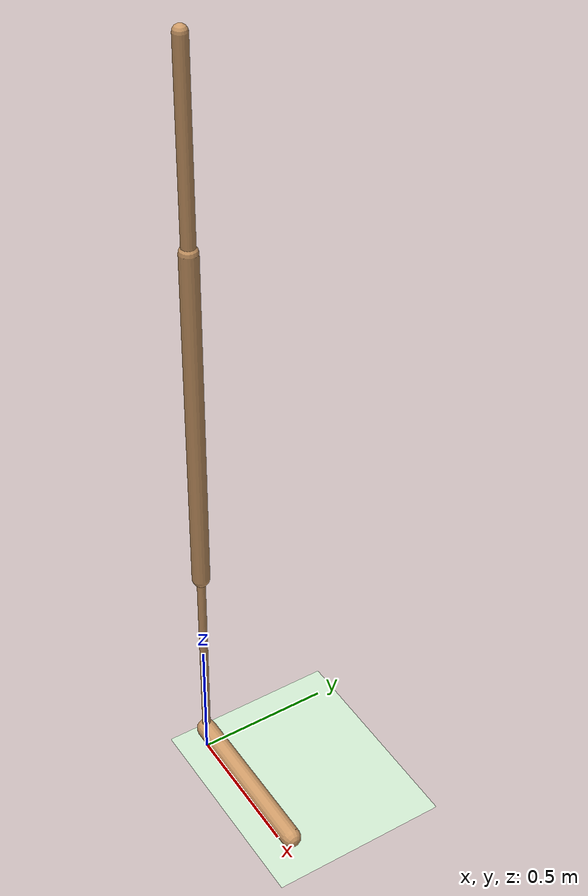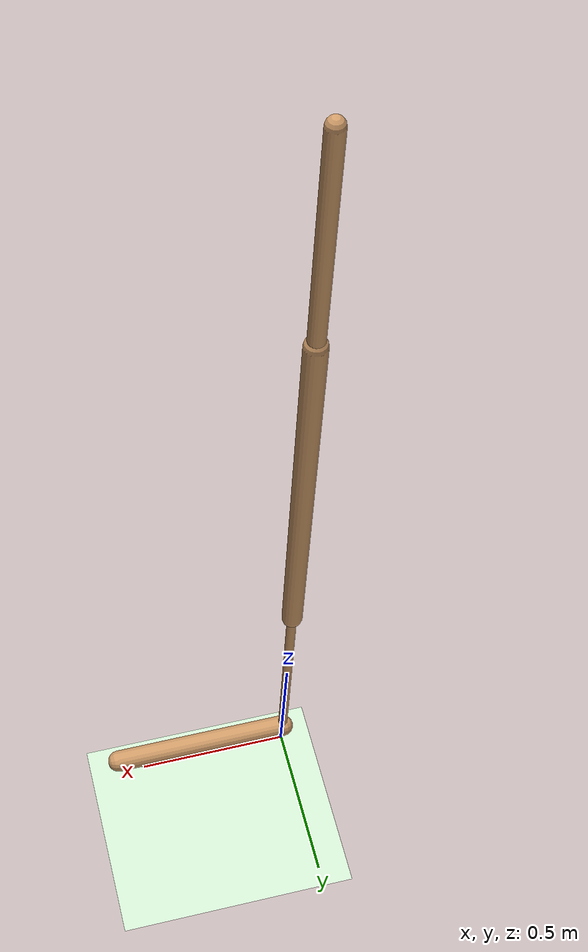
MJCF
<mujoco model="walker2d">
  <compiler angle="degree" inertiafromgeom="true" />
  <default>
    <joint armature="0.01" damping=".1" limited="true" />
    <geom conaffinity="0" condim="3" contype="1" density="1000" friction=".7 .1 .1" rgba="0.8 0.6 .4 1" />
  </default>
  <option integrator="RK4" timestep="0.002" />
  <worldbody>
    <light cutoff="100" diffuse="1 1 1" dir="-0 0 -1.3" directional="true" exponent="1" pos="0 0 1.3" specular=".1 .1 .1" />
    <geom conaffinity="1" condim="3" name="floor" pos="0 0 0" rgba="0.8 0.9 0.8 1" size="40 40 40" type="plane" material="MatPlane" />
    <body name="torso" pos="0 0 2.5176404476165772">
      <camera name="track" mode="trackcom" pos="0 -5 -1.25" xyaxes="1 0 0 0 0 1" />
      <joint armature="0" axis="1 0 0" damping="0" limited="false" name="rootx" pos="0 0 -1.25" stiffness="0" type="slide" />
      <joint armature="0" axis="0 0 1" damping="0" limited="false" name="rootz" pos="0 0 -1.25" ref="1.25" stiffness="0" type="slide" />
      <joint armature="0" axis="0 1 0" damping="0" limited="false" name="rooty" pos="0 0 0" stiffness="0" type="hinge" />
      <geom friction="0.9" name="torso_geom" size="0.023579714819788933 0.3381052017211914" type="capsule" />
      <body name="thigh" pos="0 0 -0.3381052017211914">
        <joint axis="0 -1 0" name="thigh_joint" pos="0 0 0" range="-150 0" type="hinge" />
        <site name="torso_thigh_site" pos="0 0 0" size="0.01" type="sphere" rgba="1 0 0 0.5" />
        <geom friction="0.9" pos="0 0 -0.650641918182373" name="thigh_geom" size="0.03168394789099693 0.650641918182373" type="capsule" />
        <body name="leg" pos="0 0 -1.690409541130066">
          <joint axis="0 -1 0" name="leg_joint" pos="0 0 0.3891257047653198" range="-150 0" type="hinge" />
          <site name="thigh_leg_site" pos="0 0 0.25" size="0.01" type="sphere" rgba="1 0 0 0.5" />
          <geom friction="0.9" name="leg_geom" size="0.01521909050643444 0.3891257047653198" type="capsule" />
          <body name="foot" pos="0.5863878726959229 0 -0.4891257047653198">
            <joint axis="0 -1 0" name="foot_joint" pos="-0.5863878726959229 0 0.1" range="-45 45" type="hinge" />
            <site name="leg_foot_site" pos="-0.2 0 0.1" size="0.01" type="sphere" rgba="1 0 0 0.5" />
            <geom friction="0.9" pos="-0.2931939363479614 0 0.1" quat="0.70710678118654757 0 -0.70710678118654746 0" name="foot_geom" size="0.03638433292508125 0.2931939363479614" type="capsule" />
          </body>
        </body>
      </body>

      <body name="thigh_left" pos="0 0 -0.3381052017211914">
        <joint axis="0 -1 0" name="thigh_left_joint" pos="0 0 0" range="-150 0" type="hinge" />
        <site name="torso_thigh_left_site" pos="0 0 0" size="0.01" type="sphere" rgba="1 0 0 0.5" />
        <geom friction="0.9" name="thigh_left_geom" rgba=".7 .3 .6 1" size="0.03168394789099693 0.650641918182373" pos="0 0 -0.650641918182373" type="capsule" />
        <body name="leg_left" pos="0 0 -1.690409541130066">
          <joint axis="0 -1 0" name="leg_left_joint" pos="0 0 0.3891257047653198" range="-150 0" type="hinge" />
          <site name="thigh_leg_left_site" pos="0 0 0.25" size="0.01" type="sphere" rgba="1 0 0 0.5" />
          <geom friction="0.9" name="leg_left_geom" rgba=".7 .3 .6 1" size="0.01521909050643444 0.3891257047653198" type="capsule" />
          <body name="foot_left" pos="0.5863878726959229 0 -0.4891257047653198">
            <joint axis="0 -1 0" name="foot_left_joint" pos="-0.5863878726959229 0 0.1" range="-45 45" type="hinge" />
            <site name="leg_foot_left_site" pos="-0.2 0 0.1" size="0.01" type="sphere" rgba="1 0 0 0.5" />
            <geom friction="1.9" name="foot_left_geom" rgba=".7 .3 .6 1" size="0.03638433292508125 0.2931939363479614" pos="-0.2931939363479614 0 0.1" type="capsule" quat="0.70710678118654757 0 -0.70710678118654746 0" />
          </body>
        </body>
      </body>
    </body>
  </worldbody>
  <actuator>

    <motor ctrllimited="true" ctrlrange="-1.0 1.0" gear="116.11761139889556" joint="thigh_joint" />
    <motor ctrllimited="true" ctrlrange="-1.0 1.0" gear="22.53239357266799" joint="leg_joint" />
    <motor ctrllimited="true" ctrlrange="-1.0 1.0" gear="107.81552880519114" joint="foot_joint" />
    <motor ctrllimited="true" ctrlrange="-1.0 1.0" gear="116.11761139889556" joint="thigh_left_joint" />
    <motor ctrllimited="true" ctrlrange="-1.0 1.0" gear="22.53239357266799" joint="leg_left_joint" />
    <motor ctrllimited="true" ctrlrange="-1.0 1.0" gear="107.81552880519114" joint="foot_left_joint" />

  </actuator>
    <asset>
        <texture type="skybox" builtin="gradient" rgb1=".4 .5 .6" rgb2="0 0 0" width="100" height="100" />
        <texture builtin="flat" height="1278" mark="cross" markrgb="1 1 1" name="texgeom" random="0.01" rgb1="0.8 0.6 0.4" rgb2="0.8 0.6 0.4" type="cube" width="127" />
        <texture builtin="checker" height="100" name="texplane" rgb1="0 0 0" rgb2="0.8 0.8 0.8" type="2d" width="100" />
        <material name="MatPlane" reflectance="0.5" shininess="1" specular="1" texrepeat="60 60" texture="texplane" />
        <material name="geom" texture="texgeom" texuniform="true" />
    </asset>

  <sensor>
    <force site="torso_thigh_site" name="torso_thigh_sensor" />
    <force site="thigh_leg_site" name="thigh_leg_sensor" />
    <force site="leg_foot_site" name="leg_foot_sensor" />
    <force site="torso_thigh_left_site" name="torso_thigh_left_sensor" />
    <force site="thigh_leg_left_site" name="thigh_leg_left_sensor" />
    <force site="leg_foot_left_site" name="leg_foot_left_sensor" />
  </sensor>
</mujoco>
